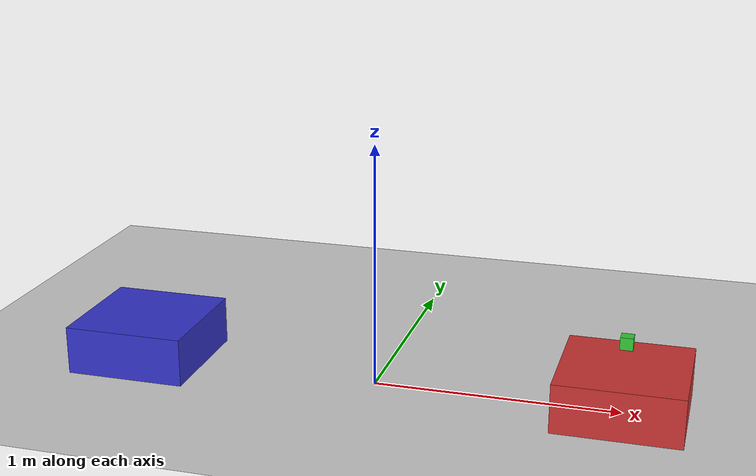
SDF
<sdf version="1.9">
  <world name="simple_world">
    <!-- Ground Plane -->
    <include><uri>model://ground_plane</uri></include>
    <!-- Lighting -->
    <include><uri>model://sun</uri></include>
    <!-- Crate -->
    <include>
      <uri>model://crate</uri>
      <pose>1 0 0.1 0 0 0</pose>
    </include>
    <!-- Cube (Item to Pick) -->
    <include>
      <uri>model://cube</uri>
      <pose>1 0 0.3 0 0 0</pose>
    </include>
    <!-- Box (Target) -->
    <include>
      <uri>model://box</uri>
      <pose>-1 0 0.1 0 0 0</pose>
    </include>
  </world>
</sdf>

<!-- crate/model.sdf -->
<sdf version="1.9">
  <model name="crate">
    <link name="crate_link">
      <visual name="visual">
        <geometry><box><size>0.5 0.5 0.2</size></box></geometry>
        <material>
          <ambient>0.8 0.2 0.2 1.0</ambient>
          <diffuse>0.8 0.2 0.2 1.0</diffuse>
          <specular>0.1 0.1 0.1 1.0</specular>
        </material>
      </visual>
      <collision name="collision">
        <geometry><box><size>0.5 0.5 0.2</size></box></geometry>
      </collision>
      <inertial>
        <mass>1.0</mass>
        <inertia><ixx>0.01</ixx><iyy>0.01</iyy><izz>0.01</izz></inertia>
      </inertial>
    </link>
  </model>
</sdf>

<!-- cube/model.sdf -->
<sdf version="1.9">
  <model name="cube">
    <link name="cube_link">
      <visual name="visual">
        <geometry><box><size>0.05 0.05 0.05</size></box></geometry>
        <material>
          <ambient>0.2 0.8 0.2 1.0</ambient>
          <diffuse>0.2 0.8 0.2 1.0</diffuse>
          <specular>0.1 0.1 0.1 1.0</specular>
        </material>
      </visual>
      <collision name="collision">
        <geometry><box><size>0.05 0.05 0.05</size></box></geometry>
      </collision>
      <inertial>
        <mass>0.1</mass>
        <inertia><ixx>0.001</ixx><iyy>0.001</iyy><izz>0.001</izz></inertia>
      </inertial>
    </link>
  </model>
</sdf>

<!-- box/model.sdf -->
<sdf version="1.9">
  <model name="box">
    <link name="box_link">
      <visual name="visual">
        <geometry><box><size>0.5 0.5 0.2</size></box></geometry>
        <material>
          <ambient>0.2 0.2 0.8 1.0</ambient>
          <diffuse>0.2 0.2 0.8 1.0</diffuse>
          <specular>0.1 0.1 0.1 1.0</specular>
        </material>
      </visual>
      <collision name="collision">
        <geometry><box><size>0.5 0.5 0.2</size></box></geometry>
      </collision>
      <inertial>
        <mass>1.0</mass>
        <inertia><ixx>0.01</ixx><iyy>0.01</iyy><izz>0.01</izz></inertia>
      </inertial>
    </link>
  </model>
</sdf>
